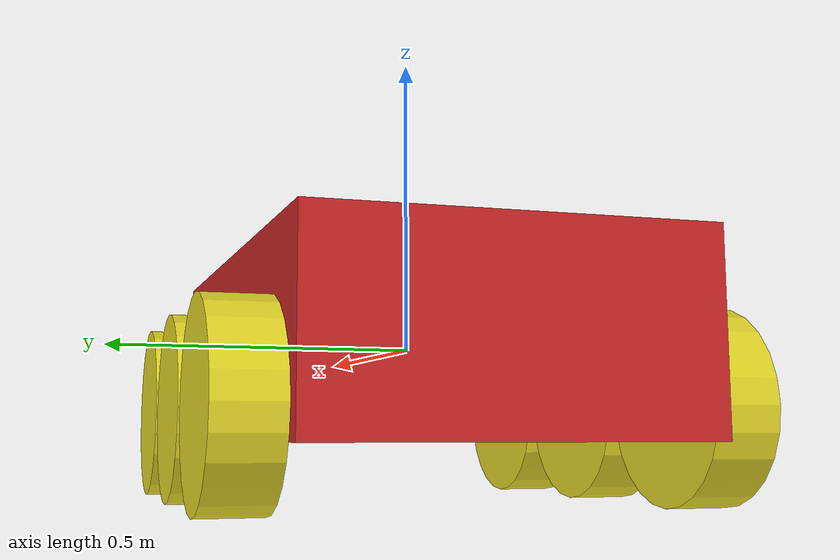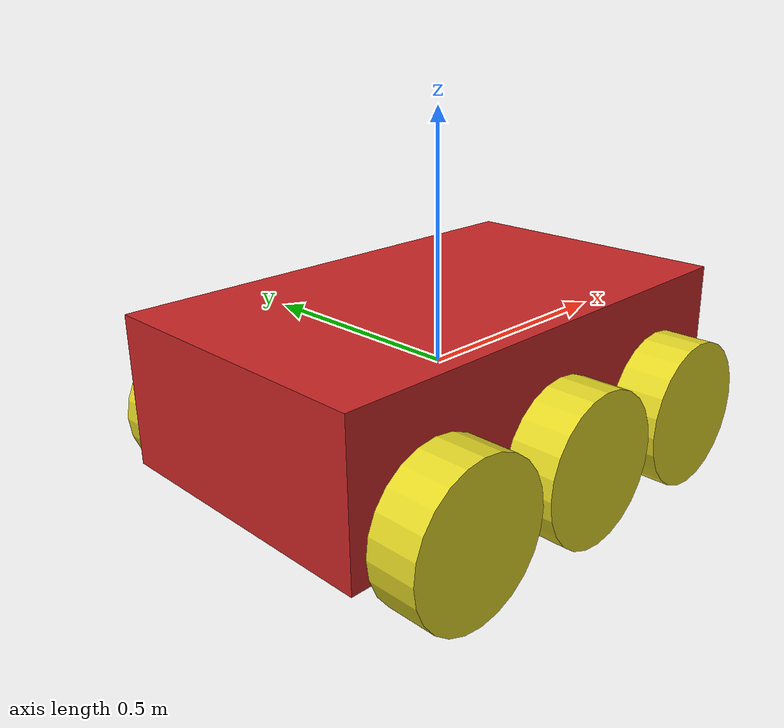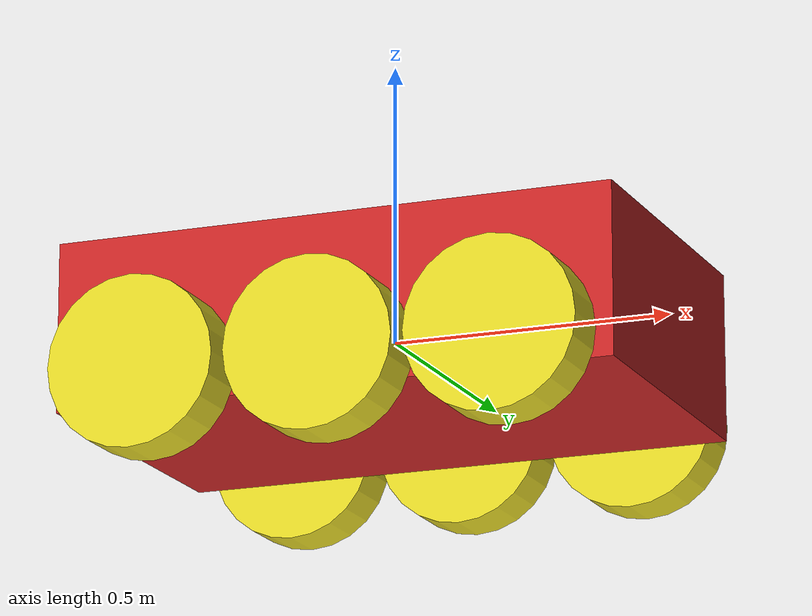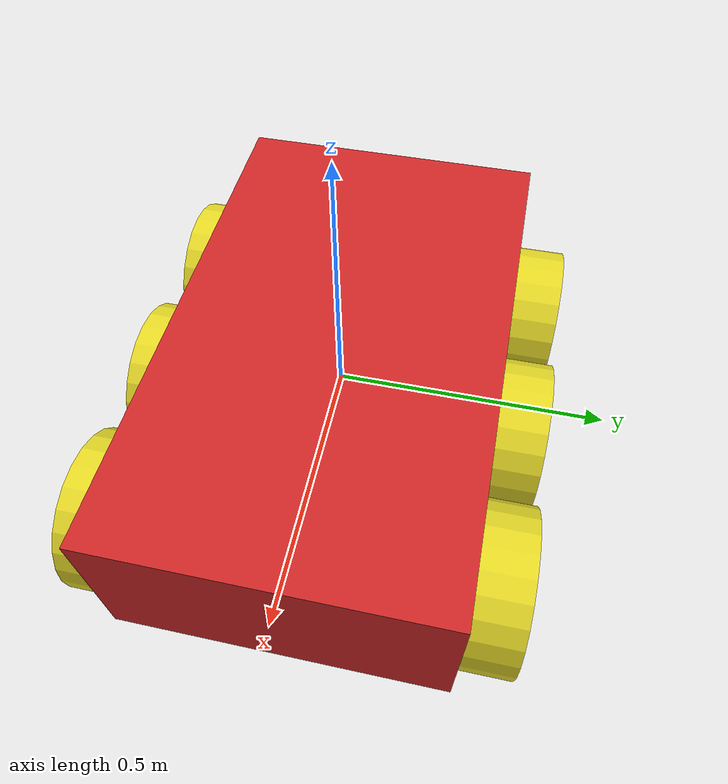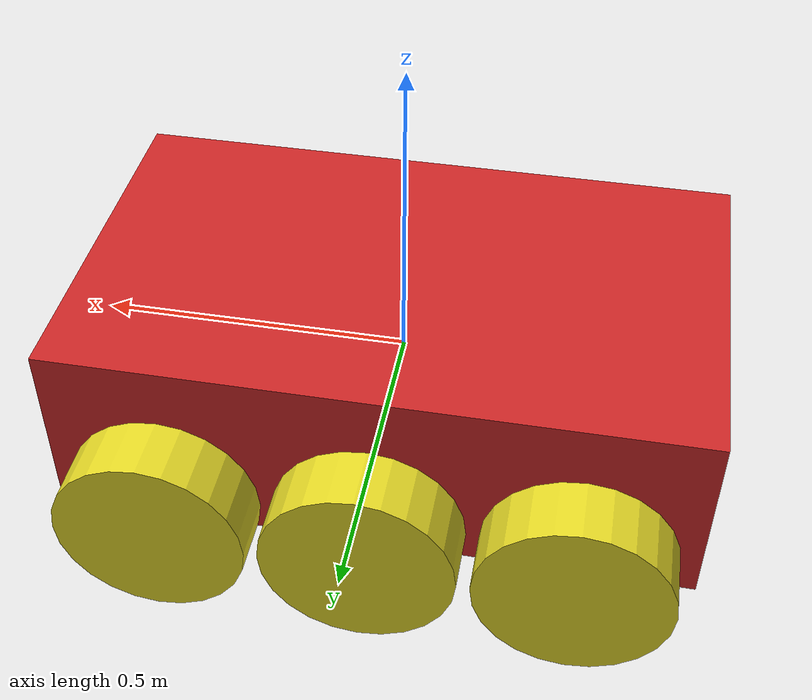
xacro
<?xml version="1.0"?>

<robot name="differenctial_drive_robot" xmlns:xacro="http://www.ros.org/wiki/xacro">
<!-- sve merne jedinice su u metrima, kilogramima itd... -->
<xacro:property name="body_link_x_dim" value="1"/>
<xacro:property name="body_link_y_dim" value="0.6"/>
<xacro:property name="body_link_z_dim" value="0.3"/>

<xacro:property name="wheel_link_radius" value="0.15"/>
<xacro:property name="wheel_link_length" value="0.1"/>
<xacro:property name="wheel_link_z_location" value="-0.1"/>

<xacro:property name="body_density" value="2710.0"/>
<xacro:property name="wheel_density" value="2710.0"/>

<xacro:property name="pi_const" value="3.14159265"/>

<xacro:property name="body_mass" value="${body_density*body_link_x_dim*body_link_y_dim*body_link_z_dim}"/>
<xacro:property name="wheel_mass" value="${wheel_density*pi_const*wheel_link_radius*wheel_link_radius*wheel_link_length}"/>

<!-- Moments of interia -->
<xacro:property name="Iz_wheel" value="${0.5*wheel_mass*wheel_link_radius*wheel_link_radius}"/>
<xacro:property name="I_wheel" value="${(1.0/12.0)*wheel_mass*(3.0*wheel_link_radius*wheel_link_radius+wheel_link_length*wheel_link_length)}"/>

<xacro:macro name="inertia_wheel">
	<inertial>
	<origin rpy="0 0 0" xyz="0 0 0"/>
	<mass value="${wheel_mass}"/>
	<inertia ixx="${I_wheel}" ixy="0" ixz="0" iyy="${I_wheel}" iyz="0" izz="${I_wheel}"/>
	</inertial>
</xacro:macro>

<xacro:include filename="$(find mobile_robot)/model/robot.gazebo"/>

<link name="dummy">
</link>
<joint name="dummy_joint" type="fixed">
	<parent link="dummy"/>
	<child link="body_link"/>
</joint>

 <link name="body_link">
        <visual>
	    <geometry>
		<box size="${body_link_x_dim} ${body_link_y_dim} ${body_link_z_dim}"/>
	    </geometry>
	    <origin rpy="0 0 0" xyz="0 0 0"/>
	</visual>

	<collision>
	    <geometry>
		<box size="${body_link_x_dim} ${body_link_y_dim} ${body_link_z_dim}"/>
	    </geometry>
	    <origin rpy="0 0 0" xyz="0 0 0"/>
	</collision>

        <inertial>
            <origin rpy="0 0 0" xyz="0 0 0"/>
            <mass value="${body_mass}"/>
            <inertia ixx="${(1.0/12.0)*body_mass*(body_link_y_dim*body_link_y_dim+body_link_z_dim*body_link_z_dim)}"
            ixy="0"
            ixz="0"
            iyy="${(1/12)*body_mass*(body_link_x_dim*body_link_x_dim+body_link_z_dim*body_link_z_dim)}"
            iyz="0"
            izz="${(1/12)*body_mass*(body_link_y_dim*body_link_y_dim+body_link_x_dim*body_link_x_dim)}"/>
        </inertial>
</link>

<joint name="wheel1_joint" type="continuous">

	<parent link="body_link"/>
	<child link="wheel1_link"/>
	<origin xyz="${-body_link_x_dim/2+1.2*wheel_link_radius} ${-body_link_y_dim/2-wheel_link_length/2} ${wheel_link_z_location}" rpy="0 0 0" />
	<axis xyz="0 1 0"/>
	<limit effort="1000" velocity="1000"/>
	<dynamics damping="1.0" friction="1.0"/>
</joint>

 <link name="wheel1_link">
        <visual>
	    <origin rpy="1.570795 0 0" xyz="0 0 0"/>
	    <geometry>
	    <cylinder length="${wheel_link_length}" radius="${wheel_link_radius}"/>
	    </geometry>
	</visual>

	<collision>
	    <origin rpy="1.570795 0 0" xyz="0 0 0"/>
	    <geometry>
	    <cylinder length="${wheel_link_length}" radius="${wheel_link_radius}"/>
	    </geometry>
	</collision>

        <xacro:inertia_wheel />
</link>

<joint name="wheel2_joint" type="continuous">
	<parent link="body_link"/>
	<child link="wheel2_link"/>
	<origin xyz="${-body_link_x_dim/2+1.2*wheel_link_radius} ${body_link_y_dim/2+wheel_link_length/2} ${wheel_link_z_location}" rpy="0 0 0"/>
	<axis xyz="0 1 0"/>
	<limit effort="1000" velocity="1000"/>
	<dynamics damping="1.0" friction="1.0"/>
</joint>

 <link name="wheel2_link">
        <visual>
	    <origin rpy="1.570795 0 0" xyz="0 0 0"/>
	    <geometry>
	    <cylinder length="${wheel_link_length}" radius="${wheel_link_radius}"/>
	    </geometry>
	</visual>

	<collision>
	    <origin rpy="1.570795 0 0" xyz="0 0 0"/>
	    <geometry>
	    <cylinder length="${wheel_link_length}" radius="${wheel_link_radius}"/>
	    </geometry>
	</collision>

        <xacro:inertia_wheel />
</link>

<joint name="wheel3_joint" type="continuous">
	<parent link="body_link"/>
	<child link="wheel3_link"/>
	<origin xyz="${body_link_x_dim/2-1.2*wheel_link_radius} ${-body_link_y_dim/2-wheel_link_length/2} ${wheel_link_z_location}" rpy="0 0 0"/>
	<axis xyz="0 1 0"/>
	<limit effort="1000" velocity="1000"/>
	<dynamics damping="1.0" friction="1.0"/>
</joint>

 <link name="wheel3_link">
        <visual>
	    <origin rpy="1.570795 0 0" xyz="0 0 0"/>
	    <geometry>
	    <cylinder length="${wheel_link_length}" radius="${wheel_link_radius}"/>
	    </geometry>
	</visual>

	<collision>
	    <origin rpy="1.570795 0 0" xyz="0 0 0"/>
	    <geometry>
	    <cylinder length="${wheel_link_length}" radius="${wheel_link_radius}"/>
	    </geometry>
	</collision>

        <xacro:inertia_wheel />
</link>

<joint name="wheel4_joint" type="continuous">
	<parent link="body_link"/>
	<child link="wheel4_link"/>
	<origin xyz="${body_link_x_dim/2-1.2*wheel_link_radius} ${body_link_y_dim/2+wheel_link_length/2} ${wheel_link_z_location}" rpy="0 0 0"/>
	<axis xyz="0 1 0"/>
	<limit effort="1000" velocity="1000"/>
	<dynamics damping="1.0" friction="1.0"/>
</joint>

 <link name="wheel4_link">
        <visual>
	    <origin rpy="1.570795 0 0" xyz="0 0 0"/>
	    <geometry>
	    <cylinder length="${wheel_link_length}" radius="${wheel_link_radius}"/>
	    </geometry>
	</visual>

	<collision>
	    <origin rpy="1.570795 0 0" xyz="0 0 0"/>
	    <geometry>
	    <cylinder length="${wheel_link_length}" radius="${wheel_link_radius}"/>
	    </geometry>
	</collision>

        <xacro:inertia_wheel />
</link>

<joint name="wheel5_joint" type="continuous">
	<parent link="body_link"/>
	<child link="wheel5_link"/>
	<origin xyz="0 ${-body_link_y_dim/2-wheel_link_length/2} ${wheel_link_z_location}" rpy="0 0 0"/>
	<axis xyz="0 1 0"/>
	<limit effort="1000" velocity="1000"/>
	<dynamics damping="1.0" friction="1.0"/>
</joint>

<link name="wheel5_link">
    <visual>
	    <origin rpy="1.570795 0 0" xyz="0 0 0"/>
	    <geometry>
	        <cylinder length="${wheel_link_length}" radius="${wheel_link_radius}"/>
	    </geometry>
	</visual>
	<collision>
	    <origin rpy="1.570795 0 0" xyz="0 0 0"/>
	    <geometry>
	        <cylinder length="${wheel_link_length}" radius="${wheel_link_radius}"/>
	    </geometry>
	</collision>
    <xacro:inertia_wheel />
</link>

<joint name="wheel6_joint" type="continuous">
	<parent link="body_link"/>
	<child link="wheel6_link"/>
	<origin xyz="0 ${body_link_y_dim/2+wheel_link_length/2} ${wheel_link_z_location}" rpy="0 0 0"/>
	<axis xyz="0 1 0"/>
	<limit effort="1000" velocity="1000"/>
	<dynamics damping="1.0" friction="1.0"/>
</joint>

<link name="wheel6_link">
    <visual>
	    <origin rpy="1.570795 0 0" xyz="0 0 0"/>
	    <geometry>
	        <cylinder length="${wheel_link_length}" radius="${wheel_link_radius}"/>
	    </geometry>
	</visual>
	<collision>
	    <origin rpy="1.570795 0 0" xyz="0 0 0"/>
	    <geometry>
	        <cylinder length="${wheel_link_length}" radius="${wheel_link_radius}"/>
	    </geometry>
	</collision>
    <xacro:inertia_wheel />
</link>

</robot>
